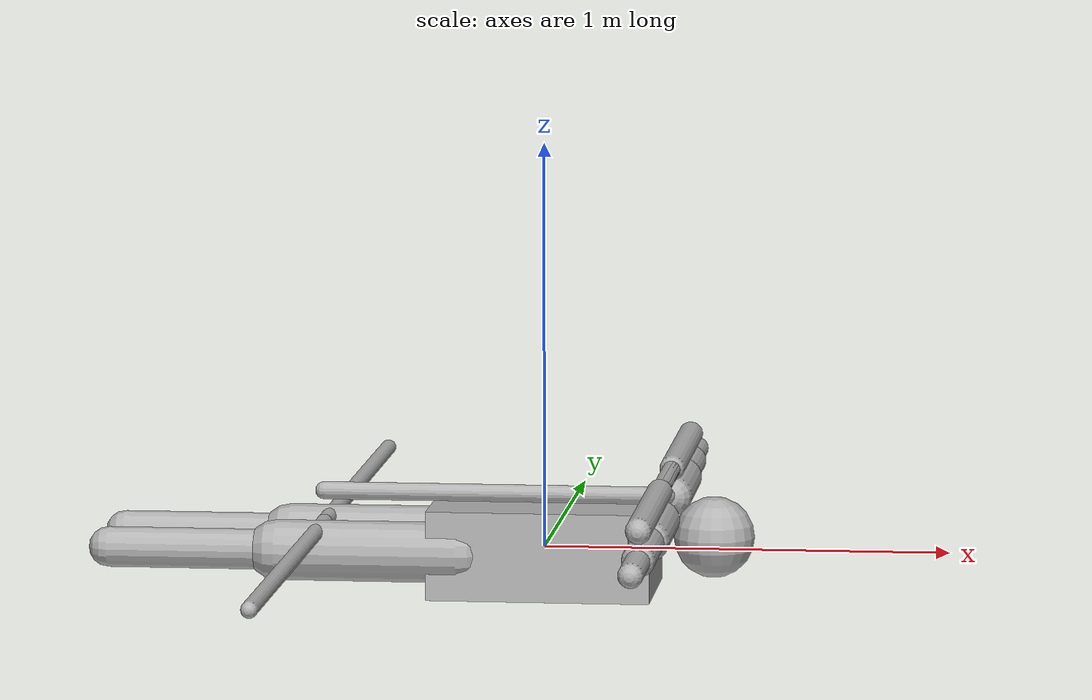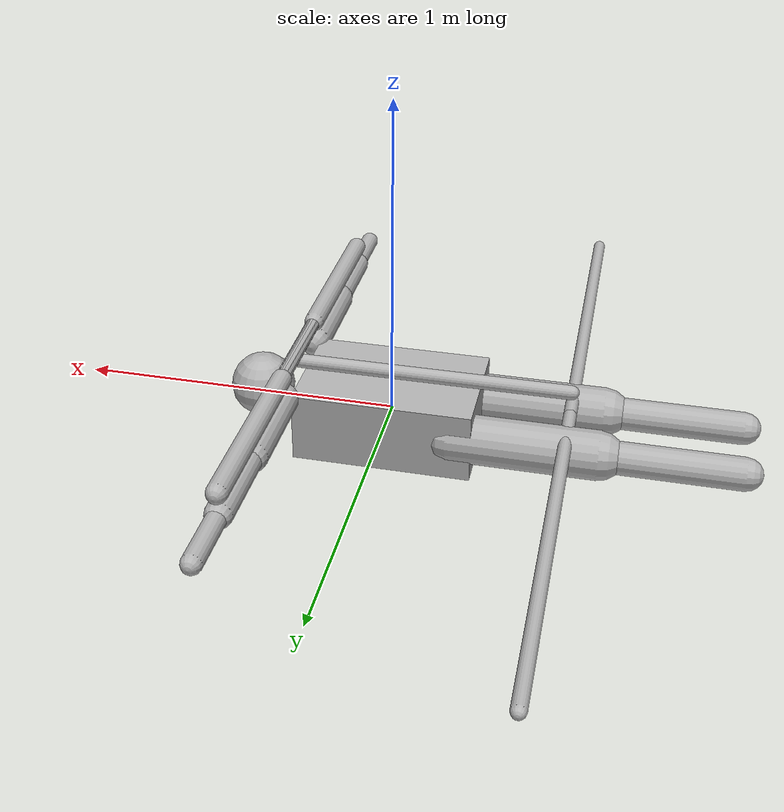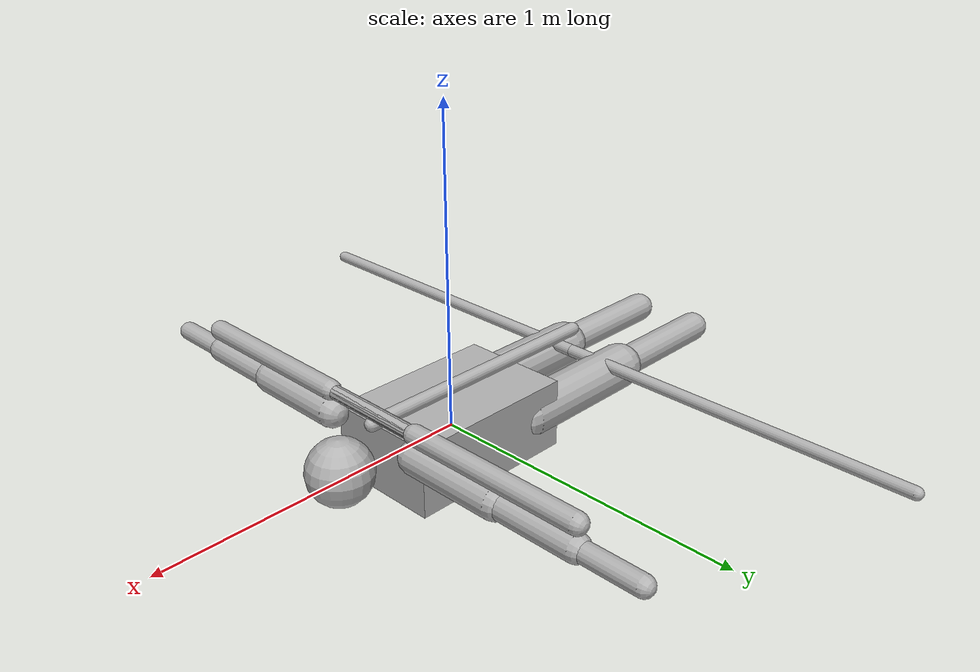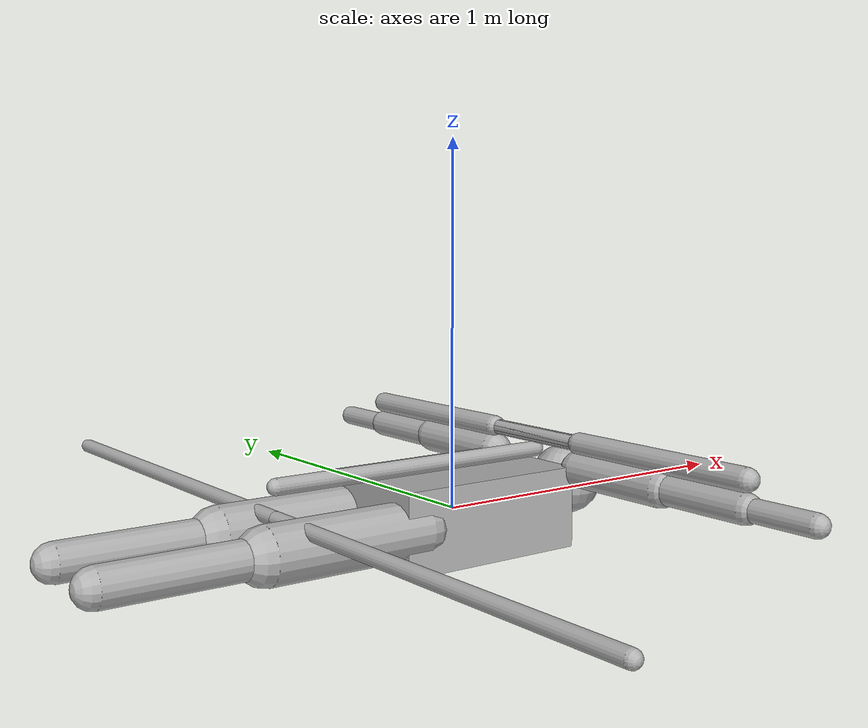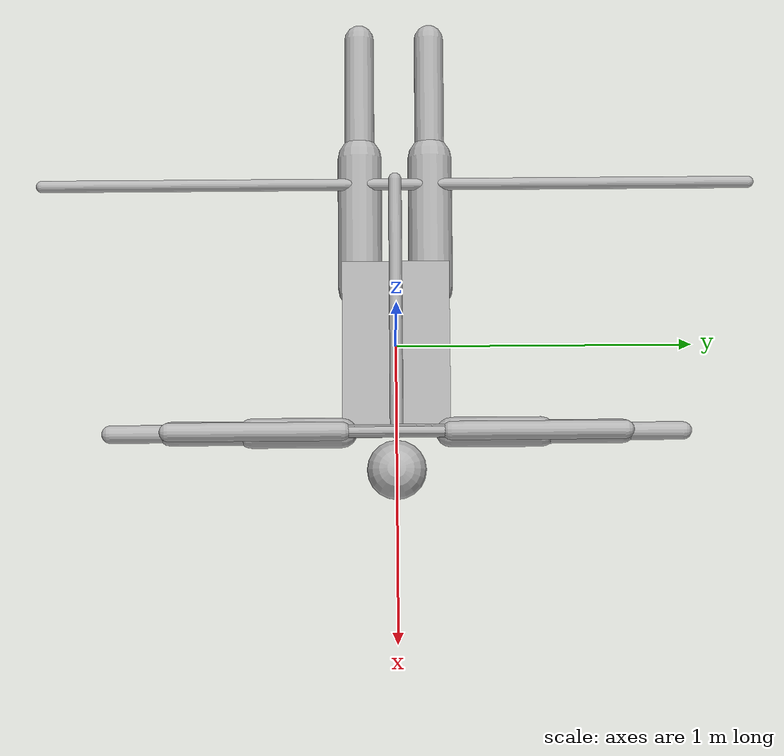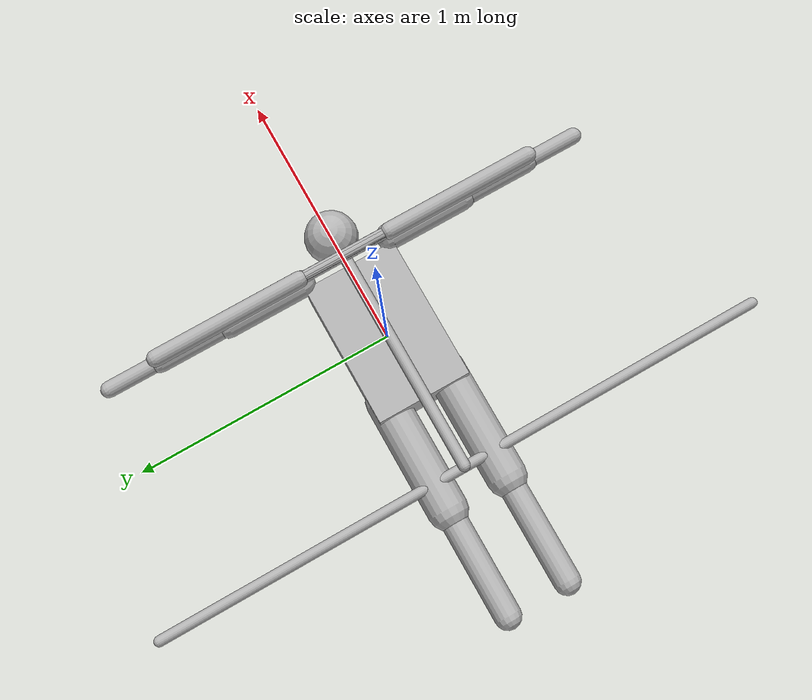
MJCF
<mujoco model="manta_deployment">
  <option timestep="0.0005" gravity="0 0 0" integrator="RK4"/>
  <compiler angle="radian" coordinate="local"/>

  <default>
    <joint armature="0.001" damping="0.5" limited="true"/>
    <geom contype="0" conaffinity="0" rgba="0.7 0.7 0.7 1"/>
    <position kp="80" kv="6"/>
  </default>

  <asset>
    <material name="skin" rgba="0.78 0.62 0.46 1"/>
    <material name="cfrp" rgba="0.10 0.10 0.10 1"/>
    <material name="harness" rgba="0.18 0.18 0.20 1"/>
  </asset>

  <worldbody>
    <body name="torso" pos="0 0 0">
      <inertial pos="0 0 0" mass="55" diaginertia="2.5 2.0 1.5"/>
      <geom name="torso_g" type="box" size="0.275 0.18 0.11" material="harness"/>
      <geom name="head_g"  type="sphere" size="0.10" pos="0.42 0 0.03" material="skin"/>
      <geom name="spine_yoke" type="capsule" fromto="0.30 0 0.13 -0.55 0 0.13" size="0.022" material="cfrp"/>

      <!-- ============== RIGHT ARM (y > 0) ============== -->
      <body name="shoulder_R" pos="0.30 0.18 0.10">
        <!-- Yaw about +z. For the right arm (extending in +y), POSITIVE yaw
             rotates the +y direction toward -x → aft sweep. Stowed=0, deployed=+0.44. -->
        <joint name="sh_R_yaw"   type="hinge" axis="0 0 1" range="-0.05 1.6" damping="2"/>
        <joint name="sh_R_pitch" type="hinge" axis="1 0 0" range="-1.5 0.05" damping="2"/>
        <body name="upper_arm_R" pos="0 0.15 0">
          <inertial pos="0 0.15 0" mass="2.5" diaginertia="0.05 0.005 0.05"/>
          <geom name="ua_R" type="capsule" fromto="0 -0.15 0 0 0.15 0" size="0.05" material="skin"/>
          <body name="elbow_R" pos="0 0.15 0">
            <joint name="el_R" type="hinge" axis="1 0 0" range="-1.6 0.05" damping="1.5"/>
            <body name="forearm_R" pos="0 0.135 0">
              <inertial pos="0 0.135 0" mass="1.6" diaginertia="0.03 0.003 0.03"/>
              <geom name="fa_R" type="capsule" fromto="0 -0.135 0 0 0.135 0" size="0.04" material="skin"/>
              <!-- LE spar: capsule along the arm, in local frame from -0.435 to +0.135 in y
                   (covers shoulder pivot to wrist), offset in +z. -->
              <geom name="le_spar_R" type="capsule" fromto="0 -0.435 0.07 0 0.135 0.07" size="0.031" material="cfrp"/>
              <body name="wrist_R" pos="0 0.135 0">
                <geom name="hand_R" type="capsule" fromto="0 0 0 0 0.20 0" size="0.03" material="skin"/>

                <!-- Telescoping wrist tip extension. At slide=0, all 3 stages
                     overlap at the wrist; at slide=full, they extend out. -->
                <body name="tip1_R" pos="0 0 0.07">
                  <joint name="tip1_R_slide" type="slide" axis="0 1 0" range="0 1.10" damping="2"/>
                  <inertial pos="0 -0.55 0" mass="0.45" diaginertia="0.015 0.001 0.015"/>
                  <!-- Geom extends INWARD (-y) at slide=0 (collapsed inside arm),
                       outward at slide=full. -->
                  <geom name="tip1_R_g" type="capsule" fromto="0 -1.10 0 0 0 0" size="0.022" material="cfrp"/>

                  <body name="tip2_R" pos="0 0 0">
                    <joint name="tip2_R_slide" type="slide" axis="0 1 0" range="0 1.10" damping="2"/>
                    <inertial pos="0 -0.55 0" mass="0.30" diaginertia="0.010 0.001 0.010"/>
                    <geom name="tip2_R_g" type="capsule" fromto="0 -1.10 0 0 0 0" size="0.018" material="cfrp"/>

                    <body name="tip3_R" pos="0 0 0">
                      <joint name="tip3_R_slide" type="slide" axis="0 1 0" range="0 1.10" damping="2"/>
                      <inertial pos="0 -0.55 0" mass="0.20" diaginertia="0.006 0.001 0.006"/>
                      <geom name="tip3_R_g" type="capsule" fromto="0 -1.10 0 0 0 0" size="0.013" material="cfrp"/>
                    </body>
                  </body>
                </body>
              </body>
            </body>
          </body>
        </body>
      </body>

      <!-- ============== LEFT ARM (y < 0) — mirror ============== -->
      <body name="shoulder_L" pos="0.30 -0.18 0.10">
        <!-- Left arm extends -y. NEGATIVE yaw rotates -y toward -x → aft sweep. -->
        <joint name="sh_L_yaw"   type="hinge" axis="0 0 1" range="-1.6 0.05" damping="2"/>
        <joint name="sh_L_pitch" type="hinge" axis="1 0 0" range="-1.5 0.05" damping="2"/>
        <body name="upper_arm_L" pos="0 -0.15 0">
          <inertial pos="0 -0.15 0" mass="2.5" diaginertia="0.05 0.005 0.05"/>
          <geom name="ua_L" type="capsule" fromto="0 0.15 0 0 -0.15 0" size="0.05" material="skin"/>
          <body name="elbow_L" pos="0 -0.15 0">
            <joint name="el_L" type="hinge" axis="1 0 0" range="-1.6 0.05" damping="1.5"/>
            <body name="forearm_L" pos="0 -0.135 0">
              <inertial pos="0 -0.135 0" mass="1.6" diaginertia="0.03 0.003 0.03"/>
              <geom name="fa_L" type="capsule" fromto="0 0.135 0 0 -0.135 0" size="0.04" material="skin"/>
              <geom name="le_spar_L" type="capsule" fromto="0 0.435 0.07 0 -0.135 0.07" size="0.031" material="cfrp"/>
              <body name="wrist_L" pos="0 -0.135 0">
                <geom name="hand_L" type="capsule" fromto="0 0 0 0 -0.20 0" size="0.03" material="skin"/>

                <body name="tip1_L" pos="0 0 0.07">
                  <joint name="tip1_L_slide" type="slide" axis="0 -1 0" range="0 1.10" damping="2"/>
                  <inertial pos="0 0.55 0" mass="0.45" diaginertia="0.015 0.001 0.015"/>
                  <geom name="tip1_L_g" type="capsule" fromto="0 1.10 0 0 0 0" size="0.022" material="cfrp"/>
                  <body name="tip2_L" pos="0 0 0">
                    <joint name="tip2_L_slide" type="slide" axis="0 -1 0" range="0 1.10" damping="2"/>
                    <inertial pos="0 0.55 0" mass="0.30" diaginertia="0.010 0.001 0.010"/>
                    <geom name="tip2_L_g" type="capsule" fromto="0 1.10 0 0 0 0" size="0.018" material="cfrp"/>
                    <body name="tip3_L" pos="0 0 0">
                      <joint name="tip3_L_slide" type="slide" axis="0 -1 0" range="0 1.10" damping="2"/>
                      <inertial pos="0 0.55 0" mass="0.20" diaginertia="0.006 0.001 0.006"/>
                      <geom name="tip3_L_g" type="capsule" fromto="0 1.10 0 0 0 0" size="0.013" material="cfrp"/>
                    </body>
                  </body>
                </body>
              </body>
            </body>
          </body>
        </body>
      </body>

      <!-- ============== HIPS / LEGS ============== -->
      <body name="hip_R" pos="-0.20 0.12 0">
        <joint name="hip_R_yaw" type="hinge" axis="0 0 1" range="-0.5 0.05" damping="2"/>
        <body name="upper_leg_R" pos="-0.225 0 0">
          <inertial pos="-0.225 0 0" mass="6.0" diaginertia="0.10 0.008 0.10"/>
          <geom name="ul_R" type="capsule" fromto="0.225 0 0 -0.225 0 0" size="0.075" material="skin"/>
          <body name="knee_R" pos="-0.225 0 0">
            <joint name="kn_R" type="hinge" axis="0 1 0" range="-0.6 0.6" damping="1.5"/>
            <body name="lower_leg_R" pos="-0.21 0 0">
              <inertial pos="-0.21 0 0" mass="3.0" diaginertia="0.05 0.005 0.05"/>
              <geom name="ll_R" type="capsule" fromto="0.21 0 0 -0.21 0 0" size="0.05" material="skin"/>
            </body>
          </body>
        </body>
      </body>
      <body name="hip_L" pos="-0.20 -0.12 0">
        <joint name="hip_L_yaw" type="hinge" axis="0 0 1" range="-0.05 0.5" damping="2"/>
        <body name="upper_leg_L" pos="-0.225 0 0">
          <inertial pos="-0.225 0 0" mass="6.0" diaginertia="0.10 0.008 0.10"/>
          <geom name="ul_L" type="capsule" fromto="0.225 0 0 -0.225 0 0" size="0.075" material="skin"/>
          <body name="knee_L" pos="-0.225 0 0">
            <joint name="kn_L" type="hinge" axis="0 1 0" range="-0.6 0.6" damping="1.5"/>
            <body name="lower_leg_L" pos="-0.21 0 0">
              <inertial pos="-0.21 0 0" mass="3.0" diaginertia="0.05 0.005 0.05"/>
              <geom name="ll_L" type="capsule" fromto="0.21 0 0 -0.21 0 0" size="0.05" material="skin"/>
            </body>
          </body>
        </body>
      </body>

      <!-- ============== TE SPAR (body-mounted, telescoping spanwise) ============== -->
      <body name="te_hub" pos="-0.55 0 0.05">
        <body name="te1_R" pos="0 0 0">
          <joint name="te1_R_slide" type="slide" axis="0 1 0" range="0 1.20" damping="2"/>
          <inertial pos="0 -0.6 0" mass="0.40" diaginertia="0.012 0.001 0.012"/>
          <geom name="te1_R_g" type="capsule" fromto="0 -1.20 0 0 0 0" size="0.020" material="cfrp"/>
          <body name="te2_R" pos="0 0 0">
            <joint name="te2_R_slide" type="slide" axis="0 1 0" range="0 1.20" damping="2"/>
            <inertial pos="0 -0.6 0" mass="0.27" diaginertia="0.008 0.001 0.008"/>
            <geom name="te2_R_g" type="capsule" fromto="0 -1.20 0 0 0 0" size="0.016" material="cfrp"/>
            <body name="te3_R" pos="0 0 0">
              <joint name="te3_R_slide" type="slide" axis="0 1 0" range="0 1.20" damping="2"/>
              <inertial pos="0 -0.6 0" mass="0.18" diaginertia="0.005 0.001 0.005"/>
              <geom name="te3_R_g" type="capsule" fromto="0 -1.20 0 0 0 0" size="0.013" material="cfrp"/>
            </body>
          </body>
        </body>
        <body name="te1_L" pos="0 0 0">
          <joint name="te1_L_slide" type="slide" axis="0 -1 0" range="0 1.20" damping="2"/>
          <inertial pos="0 0.6 0" mass="0.40" diaginertia="0.012 0.001 0.012"/>
          <geom name="te1_L_g" type="capsule" fromto="0 1.20 0 0 0 0" size="0.020" material="cfrp"/>
          <body name="te2_L" pos="0 0 0">
            <joint name="te2_L_slide" type="slide" axis="0 -1 0" range="0 1.20" damping="2"/>
            <inertial pos="0 0.6 0" mass="0.27" diaginertia="0.008 0.001 0.008"/>
            <geom name="te2_L_g" type="capsule" fromto="0 1.20 0 0 0 0" size="0.016" material="cfrp"/>
            <body name="te3_L" pos="0 0 0">
              <joint name="te3_L_slide" type="slide" axis="0 -1 0" range="0 1.20" damping="2"/>
              <inertial pos="0 0.6 0" mass="0.18" diaginertia="0.005 0.001 0.005"/>
              <geom name="te3_L_g" type="capsule" fromto="0 1.20 0 0 0 0" size="0.013" material="cfrp"/>
            </body>
          </body>
        </body>
      </body>
    </body>
  </worldbody>

  <actuator>
    <position name="sh_R_yaw_act"   joint="sh_R_yaw"   kp="180" kv="14"/>
    <position name="sh_L_yaw_act"   joint="sh_L_yaw"   kp="180" kv="14"/>
    <position name="sh_R_pitch_act" joint="sh_R_pitch" kp="180" kv="14"/>
    <position name="sh_L_pitch_act" joint="sh_L_pitch" kp="180" kv="14"/>
    <position name="el_R_act" joint="el_R" kp="120" kv="10"/>
    <position name="el_L_act" joint="el_L" kp="120" kv="10"/>
    <position name="hip_R_yaw_act" joint="hip_R_yaw" kp="120" kv="10"/>
    <position name="hip_L_yaw_act" joint="hip_L_yaw" kp="120" kv="10"/>

    <!-- Position controllers on telescoping stages — drive from 0 (collapsed)
         to 1.10 m (extended) via commanded position with a stiff PD. -->
    <position name="tip1_R_act" joint="tip1_R_slide" kp="800" kv="40"/>
    <position name="tip2_R_act" joint="tip2_R_slide" kp="800" kv="40"/>
    <position name="tip3_R_act" joint="tip3_R_slide" kp="800" kv="40"/>
    <position name="tip1_L_act" joint="tip1_L_slide" kp="800" kv="40"/>
    <position name="tip2_L_act" joint="tip2_L_slide" kp="800" kv="40"/>
    <position name="tip3_L_act" joint="tip3_L_slide" kp="800" kv="40"/>
    <position name="te1_R_act"  joint="te1_R_slide"  kp="600" kv="30"/>
    <position name="te2_R_act"  joint="te2_R_slide"  kp="600" kv="30"/>
    <position name="te3_R_act"  joint="te3_R_slide"  kp="600" kv="30"/>
    <position name="te1_L_act"  joint="te1_L_slide"  kp="600" kv="30"/>
    <position name="te2_L_act"  joint="te2_L_slide"  kp="600" kv="30"/>
    <position name="te3_L_act"  joint="te3_L_slide"  kp="600" kv="30"/>
  </actuator>
</mujoco>
